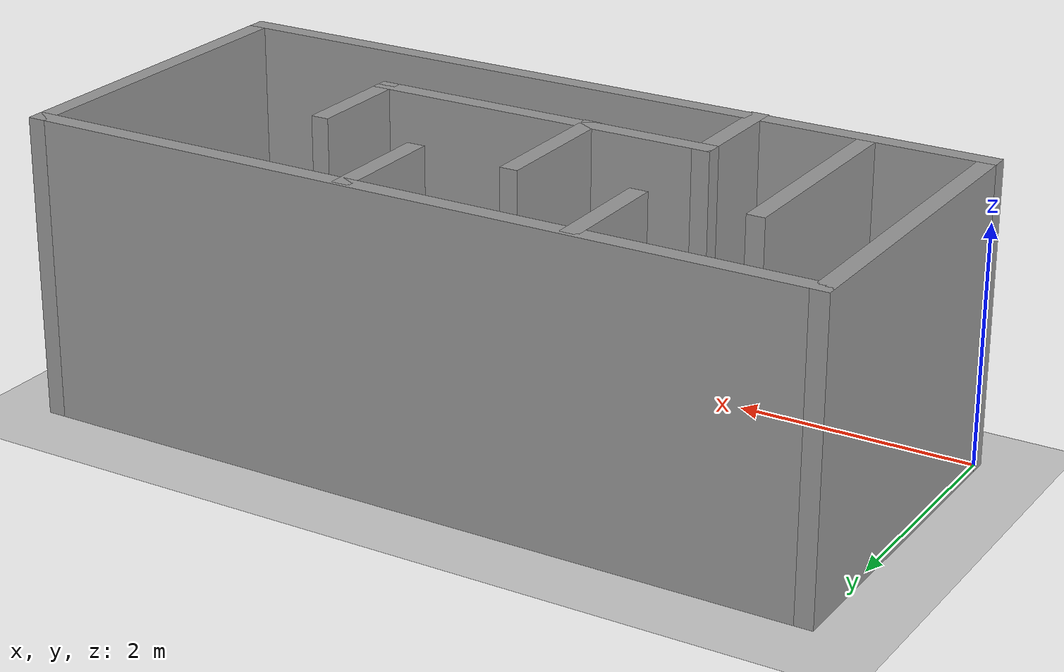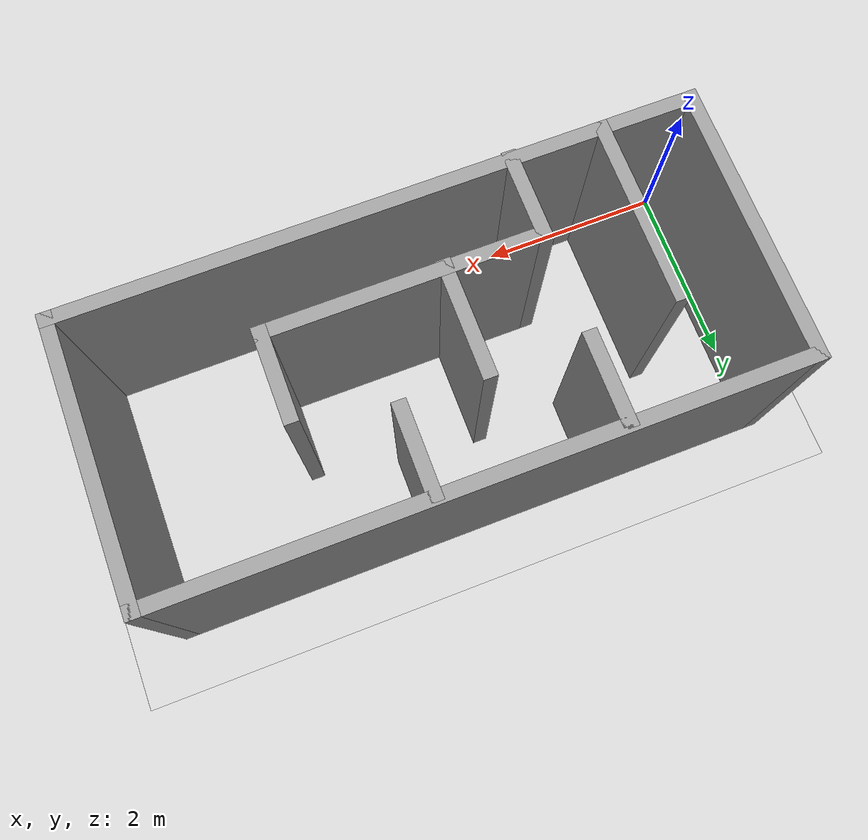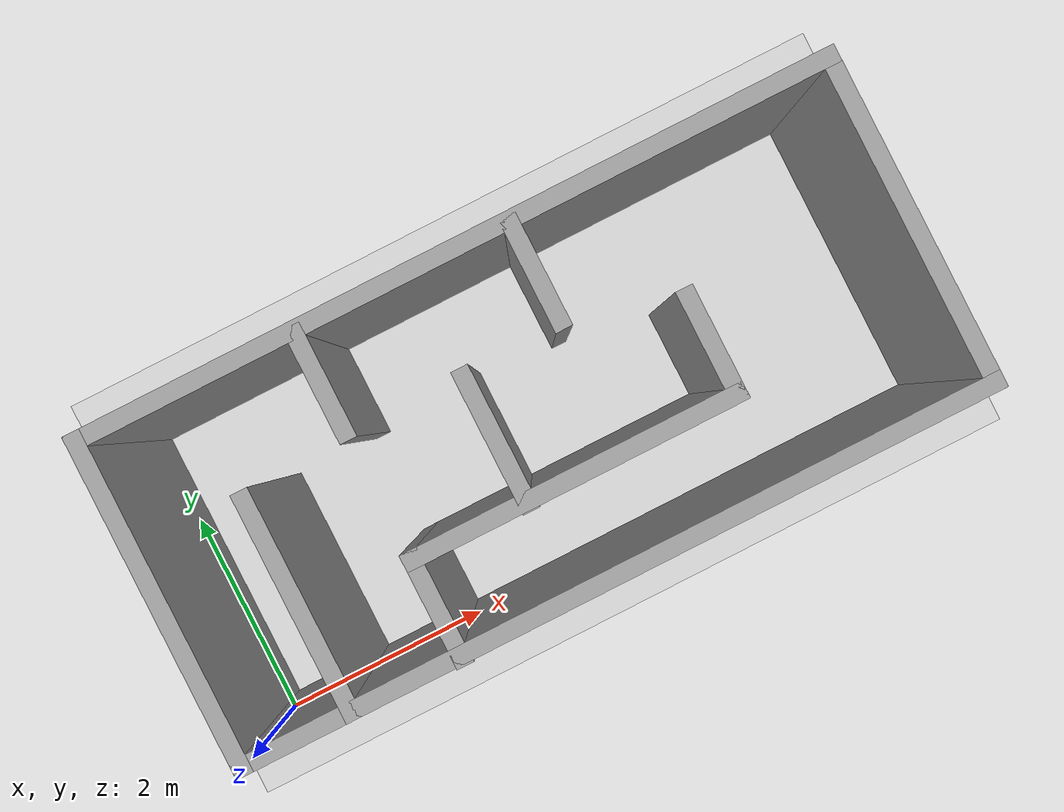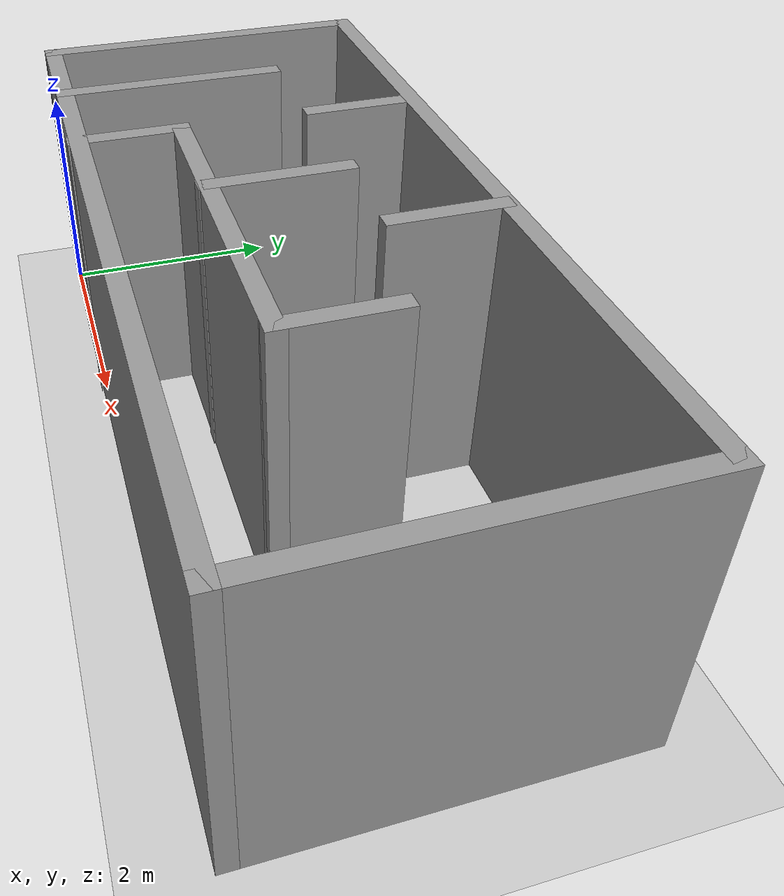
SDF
<sdf version="1.7">
 <world name="default">
  <light name="sun" type="directional">
   <pose>0 0 10 0 -0 0</pose>
   <diffuse>0.8 0.8 0.8 1</diffuse>
   <specular>0.2 0.2 0.2 1</specular>
   <attenuation>
    <range>1000</range>
    <constant>0.9</constant>
    <linear>0.01</linear>
    <quadratic>0.001</quadratic>
   </attenuation>
   <direction>-0.5 0.1 -0.9</direction>
   <spot><inner_angle>0</inner_angle><outer_angle>0</outer_angle><falloff>0</falloff></spot>
  </light>
  <model name="ground_plane">
   <static>1</static>
   <link name="link">
    <collision name="collision">
     <geometry><plane><normal>0 0 1</normal><size>100 100</size></plane></geometry>
     <surface>
      <contact><collide_bitmask>65535</collide_bitmask></contact>
      <friction><ode><mu>100</mu><mu2>50</mu2></ode></friction>
     </surface>
    </collision>
    <visual name="visual">
     <cast_shadows>0</cast_shadows>
     <geometry><plane><normal>0 0 1</normal><size>100 100</size></plane></geometry>
     <material>
      <script><uri>file://media/materials/scripts/gazebo.material</uri><name>Gazebo/Grey</name></script>
     </material>
    </visual>
   </link>
  </model>
  <gravity>0 0 -9.8</gravity>
  <magnetic_field>6e-06 2.3e-05 -4.2e-05</magnetic_field>
  <atmosphere type="adiabatic"/>
  <physics type="ode">
   <max_step_size>0.001</max_step_size>
   <real_time_factor>1</real_time_factor>
   <real_time_update_rate>1000</real_time_update_rate>
  </physics>
  <scene><ambient>0.4 0.4 0.4 1</ambient><background>0.7 0.7 0.7 1</background><shadows>1</shadows></scene>
  <spherical_coordinates>
   <surface_model>EARTH_WGS84</surface_model>
   <latitude_deg>0</latitude_deg>
   <longitude_deg>0</longitude_deg>
   <elevation>0</elevation>
   <heading_deg>0</heading_deg>
  </spherical_coordinates>
  <model name="my_model">
   <model name="my_world">
    <pose>3e-06 -0 0 0 -0 0</pose>
    <link name="Wall_0">
     <collision name="Wall_0_Collision">
      <geometry><box><size>6.75 0.15 2.5</size></box></geometry>
      <pose>0 0 1.25 0 -0 0</pose>
     </collision>
     <visual name="Wall_0_Visual">
      <pose>0 0 1.25 0 -0 0</pose>
      <geometry><box><size>6.75 0.15 2.5</size></box></geometry>
      <material>
       <script><uri>file://media/materials/scripts/gazebo.material</uri><name>Gazebo/Grey</name></script>
       <ambient>1 1 1 1</ambient>
      </material>
      <meta><layer>0</layer></meta>
     </visual>
     <pose>0 1.43289 0 0 -0 0</pose>
    </link>
    <link name="Wall_1">
     <collision name="Wall_1_Collision">
      <geometry><box><size>3 0.15 2.5</size></box></geometry>
      <pose>0 0 1.25 0 -0 0</pose>
     </collision>
     <visual name="Wall_1_Visual">
      <pose>0 0 1.25 0 -0 0</pose>
      <geometry><box><size>3 0.15 2.5</size></box></geometry>
      <material>
       <script><uri>file://media/materials/scripts/gazebo.material</uri><name>Gazebo/Grey</name></script>
       <ambient>1 1 1 1</ambient>
      </material>
      <meta><layer>0</layer></meta>
     </visual>
     <pose>3.3 0.007892 0 0 -0 -1.5708</pose>
    </link>
    <link name="Wall_10">
     <collision name="Wall_10_Collision">
      <geometry><box><size>3 0.15 2.5</size></box></geometry>
      <pose>0 0 1.25 0 -0 0</pose>
     </collision>
     <visual name="Wall_10_Visual">
      <pose>0 0 1.25 0 -0 0</pose>
      <geometry><box><size>3 0.15 2.5</size></box></geometry>
      <material>
       <script><uri>file://media/materials/scripts/gazebo.material</uri><name>Gazebo/Grey</name></script>
       <ambient>1 1 1 1</ambient>
      </material>
      <meta><layer>0</layer></meta>
     </visual>
     <pose>0.045605 -0.582892 0 0 -0 0</pose>
    </link>
    <link name="Wall_11">
     <collision name="Wall_11_Collision">
      <geometry><box><size>1 0.15 2.5</size></box></geometry>
      <pose>0 0 1.25 0 -0 0</pose>
     </collision>
     <visual name="Wall_11_Visual">
      <pose>0 0 1.25 0 -0 0</pose>
      <geometry><box><size>1 0.15 2.5</size></box></geometry>
      <material>
       <script><uri>file://media/materials/scripts/gazebo.material</uri><name>Gazebo/Grey</name></script>
       <ambient>1 1 1 1</ambient>
      </material>
      <meta><layer>0</layer></meta>
     </visual>
     <pose>1.4706 -0.157892 0 0 -0 1.5708</pose>
    </link>
    <link name="Wall_15">
     <collision name="Wall_15_Collision">
      <geometry><box><size>1.25 0.15 2.5</size></box></geometry>
      <pose>0 0 1.25 0 -0 0</pose>
     </collision>
     <visual name="Wall_15_Visual">
      <pose>0 0 1.25 0 -0 0</pose>
      <geometry><box><size>1.25 0.15 2.5</size></box></geometry>
      <material>
       <script><uri>file://media/materials/scripts/gazebo.material</uri><name>Gazebo/Grey</name></script>
       <ambient>1 1 1 1</ambient>
      </material>
      <meta><layer>0</layer></meta>
     </visual>
     <pose>-0.373724 -0.043573 0 0 -0 1.5708</pose>
    </link>
    <link name="Wall_17">
     <collision name="Wall_17_Collision">
      <geometry><box><size>1 0.15 2.5</size></box></geometry>
      <pose>0 0 1.25 0 -0 0</pose>
     </collision>
     <visual name="Wall_17_Visual">
      <pose>0 0 1.25 0 -0 0</pose>
      <geometry><box><size>1 0.15 2.5</size></box></geometry>
      <material>
       <script><uri>file://media/materials/scripts/gazebo.material</uri><name>Gazebo/Grey</name></script>
       <ambient>1 1 1 1</ambient>
      </material>
      <meta><layer>0</layer></meta>
     </visual>
     <pose>0.495841 0.977646 0 0 -0 -1.5708</pose>
    </link>
    <link name="Wall_2">
     <collision name="Wall_2_Collision">
      <geometry><box><size>6.75 0.15 2.5</size></box></geometry>
      <pose>0 0 1.25 0 -0 0</pose>
     </collision>
     <visual name="Wall_2_Visual">
      <pose>0 0 1.25 0 -0 0</pose>
      <geometry><box><size>6.75 0.15 2.5</size></box></geometry>
      <material>
       <script><uri>file://media/materials/scripts/gazebo.material</uri><name>Gazebo/Grey</name></script>
       <ambient>1 1 1 1</ambient>
      </material>
      <meta><layer>0</layer></meta>
     </visual>
     <pose>0 -1.41711 0 0 -0 3.14159</pose>
    </link>
    <link name="Wall_3">
     <collision name="Wall_3_Collision">
      <geometry><box><size>3 0.15 2.5</size></box></geometry>
      <pose>0 0 1.25 0 -0 0</pose>
     </collision>
     <visual name="Wall_3_Visual">
      <pose>0 0 1.25 0 -0 0</pose>
      <geometry><box><size>3 0.15 2.5</size></box></geometry>
      <material>
       <script><uri>file://media/materials/scripts/gazebo.material</uri><name>Gazebo/Grey</name></script>
       <ambient>1 1 1 1</ambient>
      </material>
      <meta><layer>0</layer></meta>
     </visual>
     <pose>-3.3 0.007892 0 0 -0 1.5708</pose>
    </link>
    <link name="Wall_5">
     <collision name="Wall_5_Collision">
      <geometry><box><size>2 0.15 2.5</size></box></geometry>
      <pose>0 0 1.25 0 -0 0</pose>
     </collision>
     <visual name="Wall_5_Visual">
      <pose>0 0 1.25 0 -0 0</pose>
      <geometry><box><size>2 0.15 2.5</size></box></geometry>
      <material>
       <script><uri>file://media/materials/scripts/gazebo.material</uri><name>Gazebo/Grey</name></script>
       <ambient>1 1 1 1</ambient>
      </material>
      <meta><layer>0</layer></meta>
     </visual>
     <pose>-2.3397 -0.492769 0 0 -0 1.5708</pose>
    </link>
    <link name="Wall_7">
     <collision name="Wall_7_Collision">
      <geometry><box><size>1 0.15 2.5</size></box></geometry>
      <pose>0 0 1.25 0 -0 0</pose>
     </collision>
     <visual name="Wall_7_Visual">
      <pose>0 0 1.25 0 -0 0</pose>
      <geometry><box><size>1 0.15 2.5</size></box></geometry>
      <material>
       <script><uri>file://media/materials/scripts/gazebo.material</uri><name>Gazebo/Grey</name></script>
       <ambient>1 1 1 1</ambient>
      </material>
      <meta><layer>0</layer></meta>
     </visual>
     <pose>-1.39452 0.970085 0 0 -0 -1.5708</pose>
    </link>
    <link name="Wall_9">
     <collision name="Wall_9_Collision">
      <geometry><box><size>1 0.15 2.5</size></box></geometry>
      <pose>0 0 1.25 0 -0 0</pose>
     </collision>
     <visual name="Wall_9_Visual">
      <pose>0 0 1.25 0 -0 0</pose>
      <geometry><box><size>1 0.15 2.5</size></box></geometry>
      <material>
       <script><uri>file://media/materials/scripts/gazebo.material</uri><name>Gazebo/Grey</name></script>
       <ambient>1 1 1 1</ambient>
      </material>
      <meta><layer>0</layer></meta>
     </visual>
     <pose>-1.37939 -1.00789 0 0 -0 1.5708</pose>
    </link>
    <static>1</static>
   </model>
   <static>0</static>
   <pose>3.33009 1.45961 0 0 -0 0</pose>
  </model>
 </world>
</sdf>
